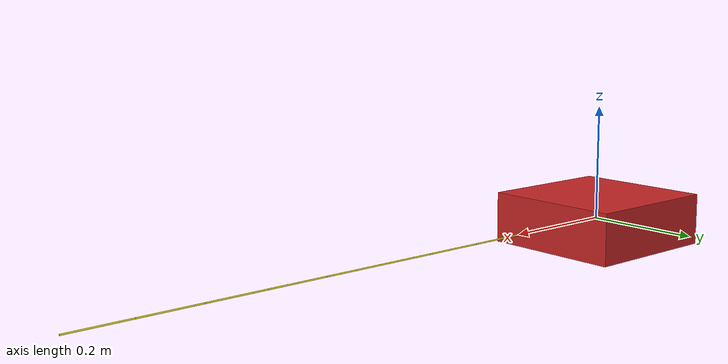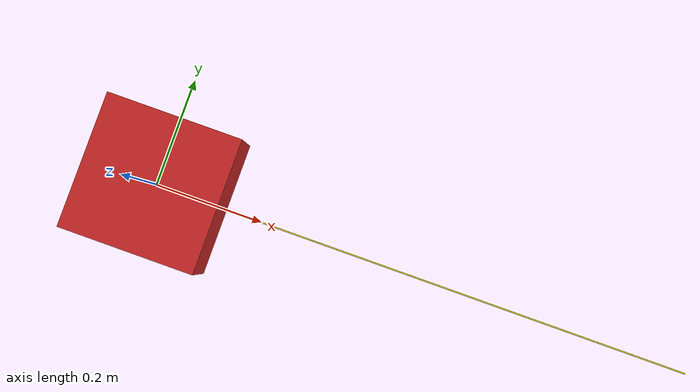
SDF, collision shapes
<?xml version="1.0" ?>
<sdf version="1.5">
<model name="falcon_cs_payload">
<static> 0 </static>

<link name="base_link">

<inertial>
	<pose>0.0	0.0	0.0	0.0	0.0	0.0	</pose>

<mass>0.9</mass>
<inertia>

<ixx>0.0049</ixx>
<iyy>0.0053</iyy>
<izz>0.0098</izz>
<ixy>5.5e-06</ixy>
<ixz>5.4e-06</ixz>
<iyz>2.1e-05</iyz>

</inertia>

</inertial>
<collision name="collision">
	<pose>0.0	0.0	0.0	0.0	0.0	0.0	</pose>

<geometry>

<box>

<size>0.2505 0.2505 0.09</size>

</box>

</geometry>
</collision>

<visual name="visual">
	<pose>0.0	0.0	0.0	0.0	0.0	-1.570796	</pose>

<geometry>

<mesh>

<uri>model://falcon_cs_payload/meshes/dega.dae</uri>
<scale>0.001 0.001 0.001</scale>

</mesh>

</geometry>
<material>

<script>

<uri>file://media/materials/scripts/gazebo.material</uri>
<name>Gazebo/Red</name>

</script>

</material>
</visual>

</link>

<!-- Groundtruth plugin -->
<plugin name="falcon_cs_payload_groundtruth_sim" filename="libgazebo_ros_p3d.so">
  <alwaysOn>true</alwaysOn>
  <updateRate>200.0</updateRate>
  <bodyName>base_link</bodyName>
  <topicName>/falcon_cs_payload/odometry/groundtruth</topicName>
  <gaussianNoise>0.0</gaussianNoise>
  <frameName>world</frameName>
  <xyzOffsets>0 0 0</xyzOffsets>
  <rpyOffsets>0 0 0</rpyOffsets>
</plugin>

<!-- Kite Quadrotor plugin-->
<plugin filename="libkite_quadrotor_plugin.so" name="falcon_cs_payload_kite_quadrotor_plugin">
  <publishRate>200.0</publishRate>
  <positionControlRate>100.0</positionControlRate>
  <attitudeControlRate>500.0</attitudeControlRate>
  <linkName>base_link</linkName>
  <namespace>falcon_cs_payload</namespace>
</plugin>

<link name = "link_0" >
<pose>0.05	0.0	0.0	0.0	0.0	0.0	</pose>

      <inertial>
        <pose>0 0 0 0 -0 0</pose>
        <mass>0.001</mass>
        <inertia>
          <ixx>0.0001</ixx>
          <ixy>0.0</ixy>
          <ixz>0.0</ixz>
          <iyy>0.0001</iyy>
          <iyz>0.0</iyz>
          <izz>0.0001</izz>
        </inertia>
      </inertial>
      <visual name='link_0_vis'>
        <pose>0 0 0 0.0 1.57079 0</pose>
        <geometry>
          <cylinder>
            <length>0.1</length>
            <radius>0.00125</radius>
          </cylinder>
        </geometry>
        <material>
          <shader type='pixel'/>
          <script>
            <uri>file://media/materials/scripts/gazebo.material</uri>
            <name>Gazebo/Yellow</name>
          </script>
        </material>
        <transparency>0</transparency>
        <cast_shadows>1</cast_shadows>
      </visual>
      <collision name='link_0_collision'>
        <laser_retro>0</laser_retro>
        <max_contacts>10</max_contacts>
        <pose>0  0 0 0.0 1.57079 0</pose>
        <geometry>
          <cylinder>
            <length>0.1</length>
            <radius>0.00125</radius>
          </cylinder>
        </geometry>
      </collision>
    </link>
<link name = "link_1" >
<pose>0.15000000000000002	0.0	0.0	0.0	0.0	0.0	</pose>

      <inertial>
        <pose>0 0 0 0 -0 0</pose>
        <mass>0.001</mass>
        <inertia>
          <ixx>0.0001</ixx>
          <ixy>0.0</ixy>
          <ixz>0.0</ixz>
          <iyy>0.0001</iyy>
          <iyz>0.0</iyz>
          <izz>0.0001</izz>
        </inertia>
      </inertial>
      <visual name='link_1_vis'>
        <pose>0 0 0 0.0 1.57079 0</pose>
        <geometry>
          <cylinder>
            <length>0.1</length>
            <radius>0.00125</radius>
          </cylinder>
        </geometry>
        <material>
          <shader type='pixel'/>
          <script>
            <uri>file://media/materials/scripts/gazebo.material</uri>
            <name>Gazebo/Yellow</name>
          </script>
        </material>
        <transparency>0</transparency>
        <cast_shadows>1</cast_shadows>
      </visual>
      <collision name='link_1_collision'>
        <laser_retro>0</laser_retro>
        <max_contacts>10</max_contacts>
        <pose>0  0 0 0.0 1.57079 0</pose>
        <geometry>
          <cylinder>
            <length>0.1</length>
            <radius>0.00125</radius>
          </cylinder>
        </geometry>
      </collision>
    </link>
<joint name='joint_0' type='universal'>
<parent>link_0</parent>
<child>link_1</child>
<pose>-0.05	0.0	0.0	0.0	0.0	0.0	</pose>
<axis>
        <xyz>0 1 0</xyz>
        <dynamics>
          <spring_reference>0</spring_reference>
          <spring_stiffness>0</spring_stiffness>
          <damping>0.0001</damping>
          <friction>0</friction>
        </dynamics>
      </axis>
      <axis2>
        <xyz>0 0 1</xyz>
        <dynamics>
          <spring_reference>0</spring_reference>
          <spring_stiffness>0</spring_stiffness>
          <damping>0.0001</damping>
          <friction>0</friction>
        </dynamics>
      </axis2>
      <physics>
        <ode>
          <limit>
            <cfm>0</cfm>
            <erp>0.2</erp>
          </limit>
          <suspension>
            <cfm>0</cfm>
            <erp>0.2</erp>
          </suspension>
        </ode>
      </physics>
    </joint>
<link name = "link_2" >
<pose>0.25	0.0	0.0	0.0	0.0	0.0	</pose>

      <inertial>
        <pose>0 0 0 0 -0 0</pose>
        <mass>0.001</mass>
        <inertia>
          <ixx>0.0001</ixx>
          <ixy>0.0</ixy>
          <ixz>0.0</ixz>
          <iyy>0.0001</iyy>
          <iyz>0.0</iyz>
          <izz>0.0001</izz>
        </inertia>
      </inertial>
      <visual name='link_2_vis'>
        <pose>0 0 0 0.0 1.57079 0</pose>
        <geometry>
          <cylinder>
            <length>0.1</length>
            <radius>0.00125</radius>
          </cylinder>
        </geometry>
        <material>
          <shader type='pixel'/>
          <script>
            <uri>file://media/materials/scripts/gazebo.material</uri>
            <name>Gazebo/Yellow</name>
          </script>
        </material>
        <transparency>0</transparency>
        <cast_shadows>1</cast_shadows>
      </visual>
      <collision name='link_2_collision'>
        <laser_retro>0</laser_retro>
        <max_contacts>10</max_contacts>
        <pose>0  0 0 0.0 1.57079 0</pose>
        <geometry>
          <cylinder>
            <length>0.1</length>
            <radius>0.00125</radius>
          </cylinder>
        </geometry>
      </collision>
    </link>
<joint name='joint_1' type='universal'>
<parent>link_1</parent>
<child>link_2</child>
<pose>-0.05	0.0	0.0	0.0	0.0	0.0	</pose>
<axis>
        <xyz>0 1 0</xyz>
        <dynamics>
          <spring_reference>0</spring_reference>
          <spring_stiffness>0</spring_stiffness>
          <damping>0.0001</damping>
          <friction>0</friction>
        </dynamics>
      </axis>
      <axis2>
        <xyz>0 0 1</xyz>
        <dynamics>
          <spring_reference>0</spring_reference>
          <spring_stiffness>0</spring_stiffness>
          <damping>0.0001</damping>
          <friction>0</friction>
        </dynamics>
      </axis2>
      <physics>
        <ode>
          <limit>
            <cfm>0</cfm>
            <erp>0.2</erp>
          </limit>
          <suspension>
            <cfm>0</cfm>
            <erp>0.2</erp>
          </suspension>
        </ode>
      </physics>
    </joint>
<link name = "link_3" >
<pose>0.35000000000000003	0.0	0.0	0.0	0.0	0.0	</pose>

      <inertial>
        <pose>0 0 0 0 -0 0</pose>
        <mass>0.001</mass>
        <inertia>
          <ixx>0.0001</ixx>
          <ixy>0.0</ixy>
          <ixz>0.0</ixz>
          <iyy>0.0001</iyy>
          <iyz>0.0</iyz>
          <izz>0.0001</izz>
        </inertia>
      </inertial>
      <visual name='link_3_vis'>
        <pose>0 0 0 0.0 1.57079 0</pose>
        <geometry>
          <cylinder>
            <length>0.1</length>
            <radius>0.00125</radius>
          </cylinder>
        </geometry>
        <material>
          <shader type='pixel'/>
          <script>
            <uri>file://media/materials/scripts/gazebo.material</uri>
            <name>Gazebo/Yellow</name>
          </script>
        </material>
        <transparency>0</transparency>
        <cast_shadows>1</cast_shadows>
      </visual>
      <collision name='link_3_collision'>
        <laser_retro>0</laser_retro>
        <max_contacts>10</max_contacts>
        <pose>0  0 0 0.0 1.57079 0</pose>
        <geometry>
          <cylinder>
            <length>0.1</length>
            <radius>0.00125</radius>
          </cylinder>
        </geometry>
      </collision>
    </link>
<joint name='joint_2' type='universal'>
<parent>link_2</parent>
<child>link_3</child>
<pose>-0.05	0.0	0.0	0.0	0.0	0.0	</pose>
<axis>
        <xyz>0 1 0</xyz>
        <dynamics>
          <spring_reference>0</spring_reference>
          <spring_stiffness>0</spring_stiffness>
          <damping>0.0001</damping>
          <friction>0</friction>
        </dynamics>
      </axis>
      <axis2>
        <xyz>0 0 1</xyz>
        <dynamics>
          <spring_reference>0</spring_reference>
          <spring_stiffness>0</spring_stiffness>
          <damping>0.0001</damping>
          <friction>0</friction>
        </dynamics>
      </axis2>
      <physics>
        <ode>
          <limit>
            <cfm>0</cfm>
            <erp>0.2</erp>
          </limit>
          <suspension>
            <cfm>0</cfm>
            <erp>0.2</erp>
          </suspension>
        </ode>
      </physics>
    </joint>
<link name = "link_4" >
<pose>0.45	0.0	0.0	0.0	0.0	0.0	</pose>

      <inertial>
        <pose>0 0 0 0 -0 0</pose>
        <mass>0.001</mass>
        <inertia>
          <ixx>0.0001</ixx>
          <ixy>0.0</ixy>
          <ixz>0.0</ixz>
          <iyy>0.0001</iyy>
          <iyz>0.0</iyz>
          <izz>0.0001</izz>
        </inertia>
      </inertial>
      <visual name='link_4_vis'>
        <pose>0 0 0 0.0 1.57079 0</pose>
        <geometry>
          <cylinder>
            <length>0.1</length>
            <radius>0.00125</radius>
          </cylinder>
        </geometry>
        <material>
          <shader type='pixel'/>
          <script>
            <uri>file://media/materials/scripts/gazebo.material</uri>
            <name>Gazebo/Yellow</name>
          </script>
        </material>
        <transparency>0</transparency>
        <cast_shadows>1</cast_shadows>
      </visual>
      <collision name='link_4_collision'>
        <laser_retro>0</laser_retro>
        <max_contacts>10</max_contacts>
        <pose>0  0 0 0.0 1.57079 0</pose>
        <geometry>
          <cylinder>
            <length>0.1</length>
            <radius>0.00125</radius>
          </cylinder>
        </geometry>
      </collision>
    </link>
<joint name='joint_3' type='universal'>
<parent>link_3</parent>
<child>link_4</child>
<pose>-0.05	0.0	0.0	0.0	0.0	0.0	</pose>
<axis>
        <xyz>0 1 0</xyz>
        <dynamics>
          <spring_reference>0</spring_reference>
          <spring_stiffness>0</spring_stiffness>
          <damping>0.0001</damping>
          <friction>0</friction>
        </dynamics>
      </axis>
      <axis2>
        <xyz>0 0 1</xyz>
        <dynamics>
          <spring_reference>0</spring_reference>
          <spring_stiffness>0</spring_stiffness>
          <damping>0.0001</damping>
          <friction>0</friction>
        </dynamics>
      </axis2>
      <physics>
        <ode>
          <limit>
            <cfm>0</cfm>
            <erp>0.2</erp>
          </limit>
          <suspension>
            <cfm>0</cfm>
            <erp>0.2</erp>
          </suspension>
        </ode>
      </physics>
    </joint>
<link name = "link_5" >
<pose>0.55	0.0	0.0	0.0	0.0	0.0	</pose>

      <inertial>
        <pose>0 0 0 0 -0 0</pose>
        <mass>0.001</mass>
        <inertia>
          <ixx>0.0001</ixx>
          <ixy>0.0</ixy>
          <ixz>0.0</ixz>
          <iyy>0.0001</iyy>
          <iyz>0.0</iyz>
          <izz>0.0001</izz>
        </inertia>
      </inertial>
      <visual name='link_5_vis'>
        <pose>0 0 0 0.0 1.57079 0</pose>
        <geometry>
          <cylinder>
            <length>0.1</length>
            <radius>0.00125</radius>
          </cylinder>
        </geometry>
        <material>
          <shader type='pixel'/>
          <script>
            <uri>file://media/materials/scripts/gazebo.material</uri>
            <name>Gazebo/Yellow</name>
          </script>
        </material>
        <transparency>0</transparency>
        <cast_shadows>1</cast_shadows>
      </visual>
      <collision name='link_5_collision'>
        <laser_retro>0</laser_retro>
        <max_contacts>10</max_contacts>
        <pose>0  0 0 0.0 1.57079 0</pose>
        <geometry>
          <cylinder>
            <length>0.1</length>
            <radius>0.00125</radius>
          </cylinder>
        </geometry>
      </collision>
    </link>
<joint name='joint_4' type='universal'>
<parent>link_4</parent>
<child>link_5</child>
<pose>-0.05	0.0	0.0	0.0	0.0	0.0	</pose>
<axis>
        <xyz>0 1 0</xyz>
        <dynamics>
          <spring_reference>0</spring_reference>
          <spring_stiffness>0</spring_stiffness>
          <damping>0.0001</damping>
          <friction>0</friction>
        </dynamics>
      </axis>
      <axis2>
        <xyz>0 0 1</xyz>
        <dynamics>
          <spring_reference>0</spring_reference>
          <spring_stiffness>0</spring_stiffness>
          <damping>0.0001</damping>
          <friction>0</friction>
        </dynamics>
      </axis2>
      <physics>
        <ode>
          <limit>
            <cfm>0</cfm>
            <erp>0.2</erp>
          </limit>
          <suspension>
            <cfm>0</cfm>
            <erp>0.2</erp>
          </suspension>
        </ode>
      </physics>
    </joint>
<link name = "link_6" >
<pose>0.6500000000000001	0.0	0.0	0.0	0.0	0.0	</pose>

      <inertial>
        <pose>0 0 0 0 -0 0</pose>
        <mass>0.001</mass>
        <inertia>
          <ixx>0.0001</ixx>
          <ixy>0.0</ixy>
          <ixz>0.0</ixz>
          <iyy>0.0001</iyy>
          <iyz>0.0</iyz>
          <izz>0.0001</izz>
        </inertia>
      </inertial>
      <visual name='link_6_vis'>
        <pose>0 0 0 0.0 1.57079 0</pose>
        <geometry>
          <cylinder>
            <length>0.1</length>
            <radius>0.00125</radius>
          </cylinder>
        </geometry>
        <material>
          <shader type='pixel'/>
          <script>
            <uri>file://media/materials/scripts/gazebo.material</uri>
            <name>Gazebo/Yellow</name>
          </script>
        </material>
        <transparency>0</transparency>
        <cast_shadows>1</cast_shadows>
      </visual>
      <collision name='link_6_collision'>
        <laser_retro>0</laser_retro>
        <max_contacts>10</max_contacts>
        <pose>0  0 0 0.0 1.57079 0</pose>
        <geometry>
          <cylinder>
            <length>0.1</length>
            <radius>0.00125</radius>
          </cylinder>
        </geometry>
      </collision>
    </link>
<joint name='joint_5' type='universal'>
<parent>link_5</parent>
<child>link_6</child>
<pose>-0.05	0.0	0.0	0.0	0.0	0.0	</pose>
<axis>
        <xyz>0 1 0</xyz>
        <dynamics>
          <spring_reference>0</spring_reference>
          <spring_stiffness>0</spring_stiffness>
          <damping>0.0001</damping>
          <friction>0</friction>
        </dynamics>
      </axis>
      <axis2>
        <xyz>0 0 1</xyz>
        <dynamics>
          <spring_reference>0</spring_reference>
          <spring_stiffness>0</spring_stiffness>
          <damping>0.0001</damping>
          <friction>0</friction>
        </dynamics>
      </axis2>
      <physics>
        <ode>
          <limit>
            <cfm>0</cfm>
            <erp>0.2</erp>
          </limit>
          <suspension>
            <cfm>0</cfm>
            <erp>0.2</erp>
          </suspension>
        </ode>
      </physics>
    </joint>
<link name = "link_7" >
<pose>0.7500000000000001	0.0	0.0	0.0	0.0	0.0	</pose>

      <inertial>
        <pose>0 0 0 0 -0 0</pose>
        <mass>0.001</mass>
        <inertia>
          <ixx>0.0001</ixx>
          <ixy>0.0</ixy>
          <ixz>0.0</ixz>
          <iyy>0.0001</iyy>
          <iyz>0.0</iyz>
          <izz>0.0001</izz>
        </inertia>
      </inertial>
      <visual name='link_7_vis'>
        <pose>0 0 0 0.0 1.57079 0</pose>
        <geometry>
          <cylinder>
            <length>0.1</length>
            <radius>0.00125</radius>
          </cylinder>
        </geometry>
        <material>
          <shader type='pixel'/>
          <script>
            <uri>file://media/materials/scripts/gazebo.material</uri>
            <name>Gazebo/Yellow</name>
          </script>
        </material>
        <transparency>0</transparency>
        <cast_shadows>1</cast_shadows>
      </visual>
      <collision name='link_7_collision'>
        <laser_retro>0</laser_retro>
        <max_contacts>10</max_contacts>
        <pose>0  0 0 0.0 1.57079 0</pose>
        <geometry>
          <cylinder>
            <length>0.1</length>
            <radius>0.00125</radius>
          </cylinder>
        </geometry>
      </collision>
    </link>
<joint name='joint_6' type='universal'>
<parent>link_6</parent>
<child>link_7</child>
<pose>-0.05	0.0	0.0	0.0	0.0	0.0	</pose>
<axis>
        <xyz>0 1 0</xyz>
        <dynamics>
          <spring_reference>0</spring_reference>
          <spring_stiffness>0</spring_stiffness>
          <damping>0.0001</damping>
          <friction>0</friction>
        </dynamics>
      </axis>
      <axis2>
        <xyz>0 0 1</xyz>
        <dynamics>
          <spring_reference>0</spring_reference>
          <spring_stiffness>0</spring_stiffness>
          <damping>0.0001</damping>
          <friction>0</friction>
        </dynamics>
      </axis2>
      <physics>
        <ode>
          <limit>
            <cfm>0</cfm>
            <erp>0.2</erp>
          </limit>
          <suspension>
            <cfm>0</cfm>
            <erp>0.2</erp>
          </suspension>
        </ode>
      </physics>
    </joint>
<link name = "link_8" >
<pose>0.8500000000000001	0.0	0.0	0.0	0.0	0.0	</pose>

      <inertial>
        <pose>0 0 0 0 -0 0</pose>
        <mass>0.001</mass>
        <inertia>
          <ixx>0.0001</ixx>
          <ixy>0.0</ixy>
          <ixz>0.0</ixz>
          <iyy>0.0001</iyy>
          <iyz>0.0</iyz>
          <izz>0.0001</izz>
        </inertia>
      </inertial>
      <visual name='link_8_vis'>
        <pose>0 0 0 0.0 1.57079 0</pose>
        <geometry>
          <cylinder>
            <length>0.1</length>
            <radius>0.00125</radius>
          </cylinder>
        </geometry>
        <material>
          <shader type='pixel'/>
          <script>
            <uri>file://media/materials/scripts/gazebo.material</uri>
            <name>Gazebo/Yellow</name>
          </script>
        </material>
        <transparency>0</transparency>
        <cast_shadows>1</cast_shadows>
      </visual>
      <collision name='link_8_collision'>
        <laser_retro>0</laser_retro>
        <max_contacts>10</max_contacts>
        <pose>0  0 0 0.0 1.57079 0</pose>
        <geometry>
          <cylinder>
            <length>0.1</length>
            <radius>0.00125</radius>
          </cylinder>
        </geometry>
      </collision>
    </link>
<joint name='joint_7' type='universal'>
<parent>link_7</parent>
<child>link_8</child>
<pose>-0.05	0.0	0.0	0.0	0.0	0.0	</pose>
<axis>
        <xyz>0 1 0</xyz>
        <dynamics>
          <spring_reference>0</spring_reference>
          <spring_stiffness>0</spring_stiffness>
          <damping>0.0001</damping>
          <friction>0</friction>
        </dynamics>
      </axis>
      <axis2>
        <xyz>0 0 1</xyz>
        <dynamics>
          <spring_reference>0</spring_reference>
          <spring_stiffness>0</spring_stiffness>
          <damping>0.0001</damping>
          <friction>0</friction>
        </dynamics>
      </axis2>
      <physics>
        <ode>
          <limit>
            <cfm>0</cfm>
            <erp>0.2</erp>
          </limit>
          <suspension>
            <cfm>0</cfm>
            <erp>0.2</erp>
          </suspension>
        </ode>
      </physics>
    </joint>
<link name = "link_9" >
<pose>0.9500000000000001	0.0	0.0	0.0	0.0	0.0	</pose>

      <inertial>
        <pose>0 0 0 0 -0 0</pose>
        <mass>0.001</mass>
        <inertia>
          <ixx>0.0001</ixx>
          <ixy>0.0</ixy>
          <ixz>0.0</ixz>
          <iyy>0.0001</iyy>
          <iyz>0.0</iyz>
          <izz>0.0001</izz>
        </inertia>
      </inertial>
      <visual name='link_9_vis'>
        <pose>0 0 0 0.0 1.57079 0</pose>
        <geometry>
          <cylinder>
            <length>0.1</length>
            <radius>0.00125</radius>
          </cylinder>
        </geometry>
        <material>
          <shader type='pixel'/>
          <script>
            <uri>file://media/materials/scripts/gazebo.material</uri>
            <name>Gazebo/Yellow</name>
          </script>
        </material>
        <transparency>0</transparency>
        <cast_shadows>1</cast_shadows>
      </visual>
      <collision name='link_9_collision'>
        <laser_retro>0</laser_retro>
        <max_contacts>10</max_contacts>
        <pose>0  0 0 0.0 1.57079 0</pose>
        <geometry>
          <cylinder>
            <length>0.1</length>
            <radius>0.00125</radius>
          </cylinder>
        </geometry>
      </collision>
    </link>
<joint name='joint_8' type='universal'>
<parent>link_8</parent>
<child>link_9</child>
<pose>-0.05	0.0	0.0	0.0	0.0	0.0	</pose>
<axis>
        <xyz>0 1 0</xyz>
        <dynamics>
          <spring_reference>0</spring_reference>
          <spring_stiffness>0</spring_stiffness>
          <damping>0.0001</damping>
          <friction>0</friction>
        </dynamics>
      </axis>
      <axis2>
        <xyz>0 0 1</xyz>
        <dynamics>
          <spring_reference>0</spring_reference>
          <spring_stiffness>0</spring_stiffness>
          <damping>0.0001</damping>
          <friction>0</friction>
        </dynamics>
      </axis2>
      <physics>
        <ode>
          <limit>
            <cfm>0</cfm>
            <erp>0.2</erp>
          </limit>
          <suspension>
            <cfm>0</cfm>
            <erp>0.2</erp>
          </suspension>
        </ode>
      </physics>
    </joint>
</model>
</sdf>
